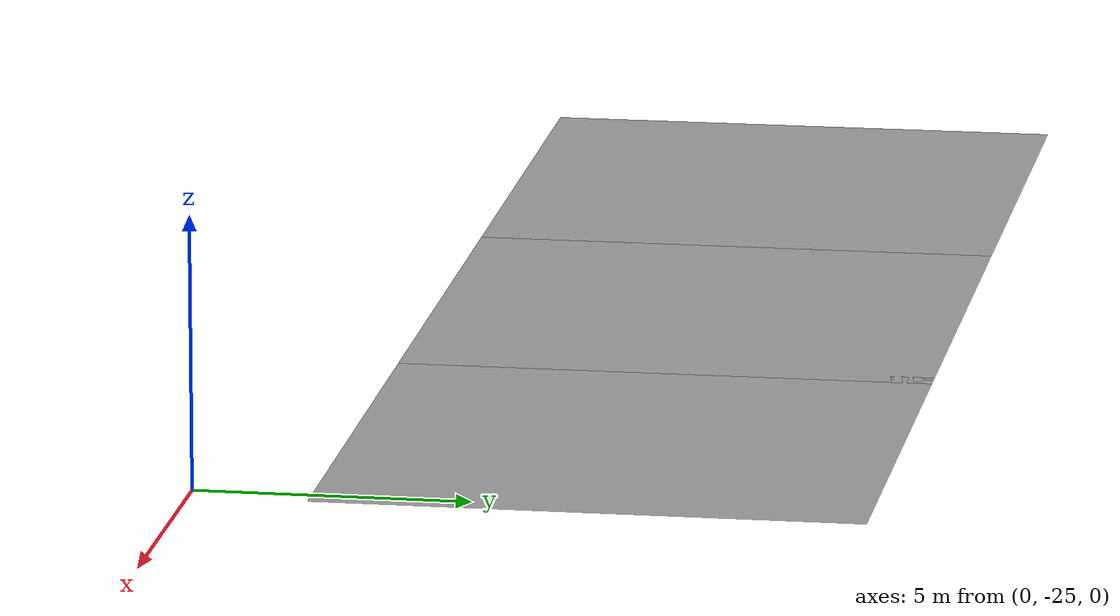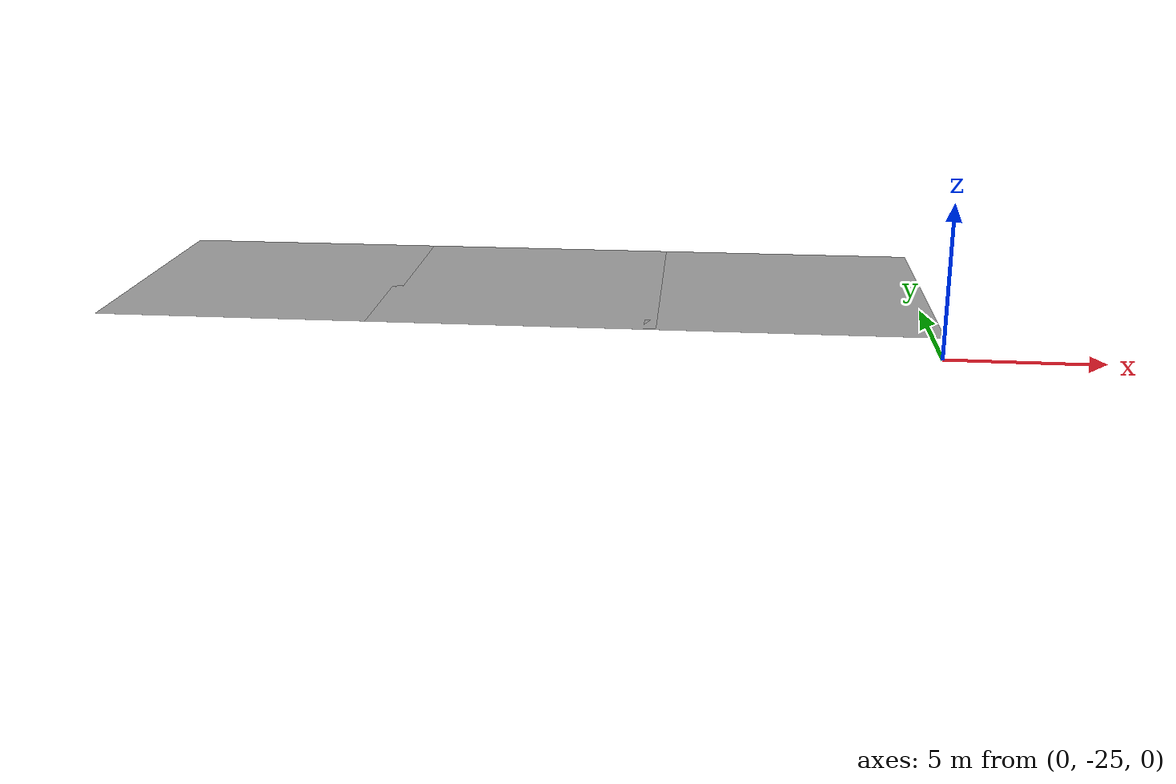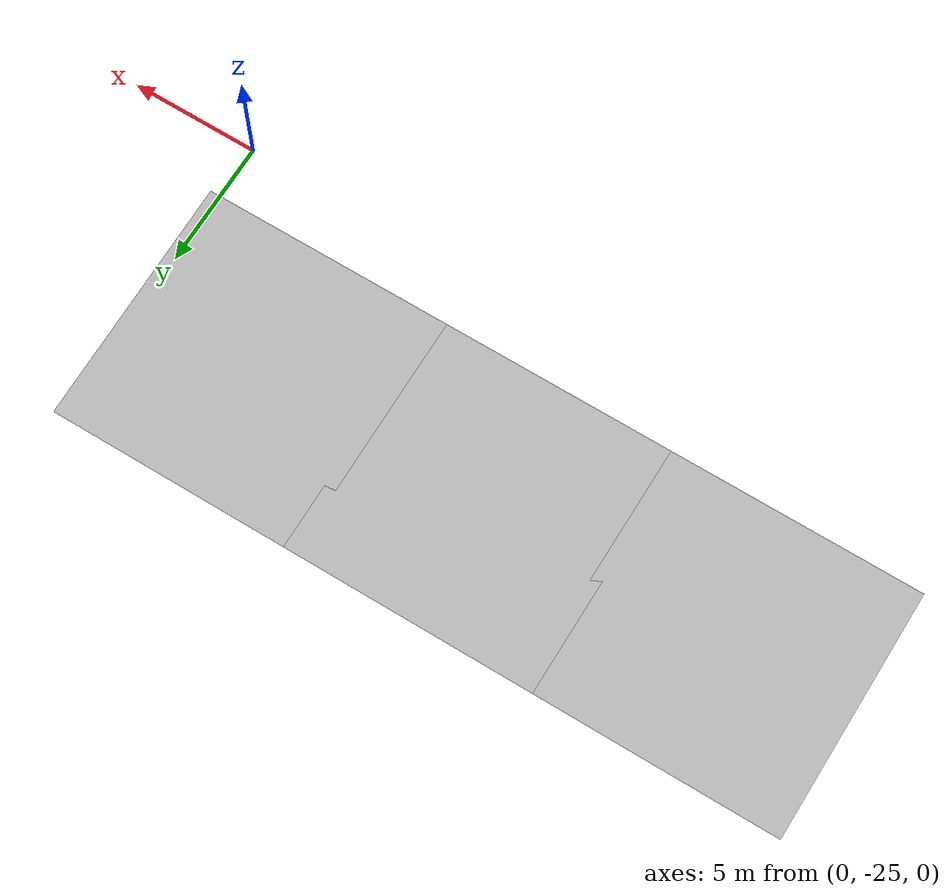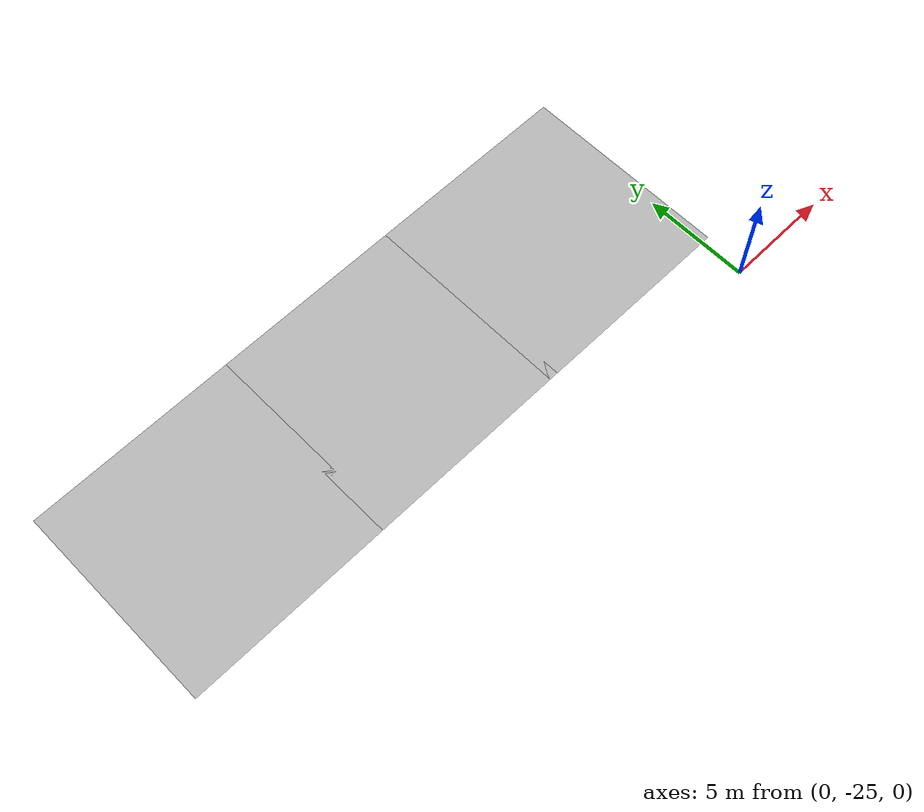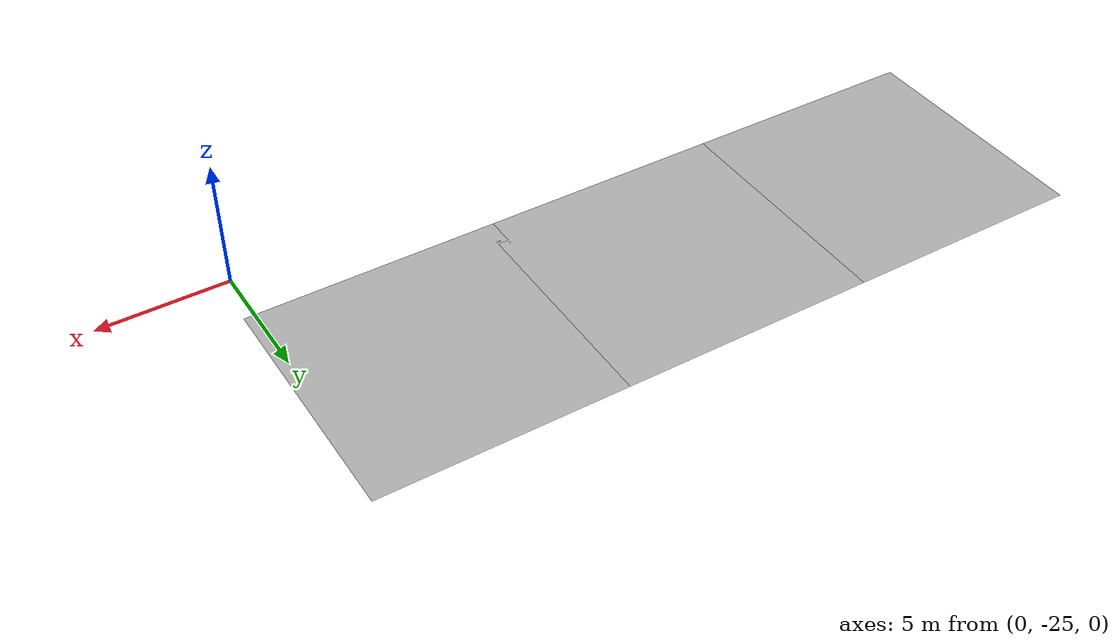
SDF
<sdf version="1.4">
 <world name="vilma_task_1">
  <model name="road">
   <static>1</static>
   <pose>-24 -18 0 0 -0 0</pose>
   <link name="link">
    <visual name="visual">
     <pose>0 0 0.005 0 -0 0</pose>
     <geometry><mesh><uri>model://road/road.dae</uri></mesh></geometry>
    </visual>
    <velocity_decay><linear>0</linear><angular>0</angular></velocity_decay>
   </link>
  </model>
  <model name="road_0">
   <static>1</static>
   <pose>-14.4828 -18 0 0 -0 0</pose>
   <link name="link">
    <visual name="visual">
     <pose>0 0 0.005 0 -0 0</pose>
     <geometry><mesh><uri>model://road/road.dae</uri></mesh></geometry>
    </visual>
    <velocity_decay><linear>0</linear><angular>0</angular></velocity_decay>
   </link>
  </model>
  <model name="road_1">
   <static>1</static>
   <pose>-5 -18 0 0 -0 0</pose>
   <link name="link">
    <visual name="visual">
     <pose>0 0 0.005 0 -0 0</pose>
     <geometry><mesh><uri>model://road/road.dae</uri></mesh></geometry>
    </visual>
    <velocity_decay><linear>0</linear><angular>0</angular></velocity_decay>
   </link>
  </model>
 </world>
</sdf>
